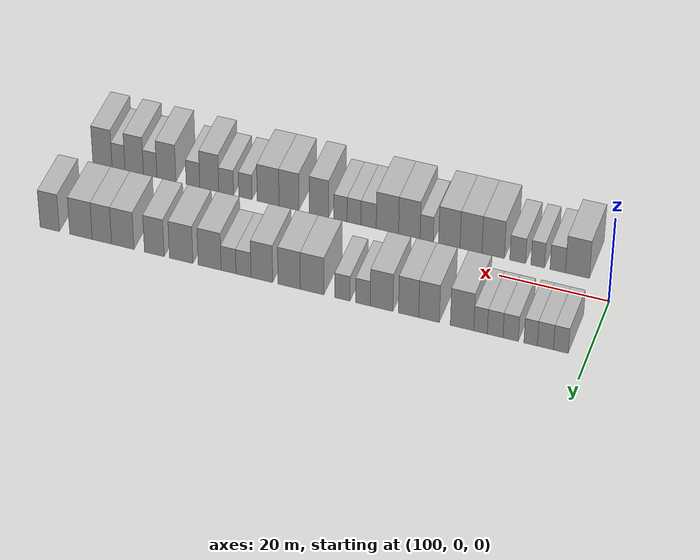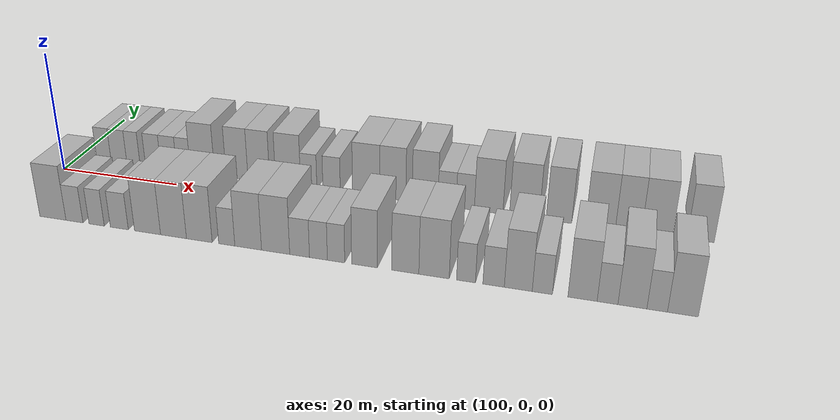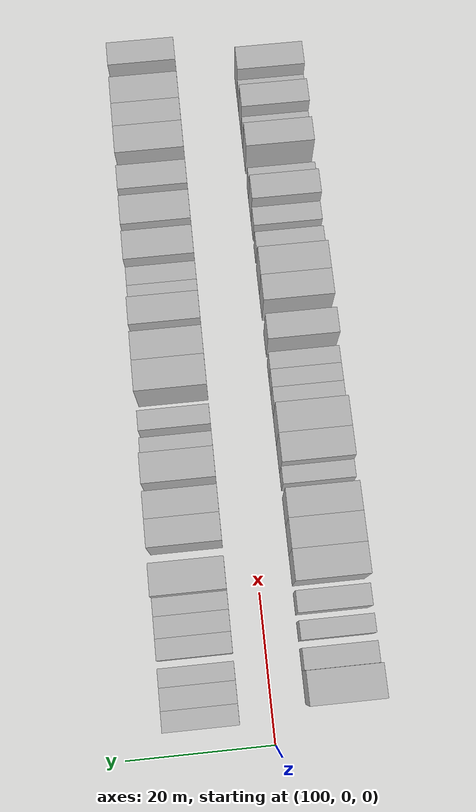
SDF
<sdf version="1.6">
 <world name="default">
  <model name="building_26">
   <static>1</static>
   <pose>104.6687 9.5000 0 0.000000 0.000000 1.570796</pose>
   <link name="link">
    <pose>0 0 3.00 0 0 0</pose>
    <collision name="collision"><geometry><box><size>10.0000 2.6517 6.0000</size></box></geometry></collision>
    <visual name="visual">
     <cast_shadows>0</cast_shadows>
     <geometry><box><size>10.0000 2.6517 6.0000</size></box></geometry>
     <material>
      <script>
       <uri>model://HANNAS_wall/materials/scripts</uri>
       <uri>model://HANNAS_wall/materials/textures</uri>
       <name>vrc/HANNAS_wall</name>
      </script>
     </material>
    </visual>
   </link>
  </model>
  <model name="building_27">
   <static>1</static>
   <pose>107.4407 9.5000 0 0.000000 0.000000 1.570796</pose>
   <link name="link">
    <pose>0 0 3.00 0 0 0</pose>
    <collision name="collision"><geometry><box><size>10.0000 2.8923 6.0000</size></box></geometry></collision>
    <visual name="visual">
     <cast_shadows>0</cast_shadows>
     <geometry><box><size>10.0000 2.8923 6.0000</size></box></geometry>
     <material>
      <script>
       <uri>model://HANNAS_wall/materials/scripts</uri>
       <uri>model://HANNAS_wall/materials/textures</uri>
       <name>vrc/HANNAS_wall</name>
      </script>
     </material>
    </visual>
   </link>
  </model>
  <model name="building_28">
   <static>1</static>
   <pose>110.0935 9.5000 0 0.000000 0.000000 1.570796</pose>
   <link name="link">
    <pose>0 0 3.00 0 0 0</pose>
    <collision name="collision"><geometry><box><size>10.0000 2.4133 6.0000</size></box></geometry></collision>
    <visual name="visual">
     <cast_shadows>0</cast_shadows>
     <geometry><box><size>10.0000 2.4133 6.0000</size></box></geometry>
     <material>
      <script>
       <uri>model://HANNAS_wall/materials/scripts</uri>
       <uri>model://HANNAS_wall/materials/textures</uri>
       <name>vrc/HANNAS_wall</name>
      </script>
     </material>
    </visual>
   </link>
  </model>
  <model name="building_29">
   <static>1</static>
   <pose>113.6905 9.5000 0 0.000000 0.000000 1.570796</pose>
   <link name="link">
    <pose>0 0 3.00 0 0 0</pose>
    <collision name="collision"><geometry><box><size>10.0000 2.7808 6.0000</size></box></geometry></collision>
    <visual name="visual">
     <cast_shadows>0</cast_shadows>
     <geometry><box><size>10.0000 2.7808 6.0000</size></box></geometry>
     <material>
      <script>
       <uri>model://HANNAS_wall/materials/scripts</uri>
       <uri>model://HANNAS_wall/materials/textures</uri>
       <name>vrc/HANNAS_wall</name>
      </script>
     </material>
    </visual>
   </link>
  </model>
  <model name="building_30">
   <static>1</static>
   <pose>116.5010 9.5000 0 0.000000 0.000000 1.570796</pose>
   <link name="link">
    <pose>0 0 3.00 0 0 0</pose>
    <collision name="collision"><geometry><box><size>10.0000 2.8401 6.0000</size></box></geometry></collision>
    <visual name="visual">
     <cast_shadows>0</cast_shadows>
     <geometry><box><size>10.0000 2.8401 6.0000</size></box></geometry>
     <material>
      <script>
       <uri>model://HANNAS_wall/materials/scripts</uri>
       <uri>model://HANNAS_wall/materials/textures</uri>
       <name>vrc/HANNAS_wall</name>
      </script>
     </material>
    </visual>
   </link>
  </model>
  <model name="building_31">
   <static>1</static>
   <pose>119.1391 9.5000 0 0.000000 0.000000 1.570796</pose>
   <link name="link">
    <pose>0 0 3.00 0 0 0</pose>
    <collision name="collision"><geometry><box><size>10.0000 2.4362 6.0000</size></box></geometry></collision>
    <visual name="visual">
     <cast_shadows>0</cast_shadows>
     <geometry><box><size>10.0000 2.4362 6.0000</size></box></geometry>
     <material>
      <script>
       <uri>model://HANNAS_wall/materials/scripts</uri>
       <uri>model://HANNAS_wall/materials/textures</uri>
       <name>vrc/HANNAS_wall</name>
      </script>
     </material>
    </visual>
   </link>
  </model>
  <model name="building_32">
   <static>1</static>
   <pose>122.4909 9.5000 0 0.000000 0.000000 1.570796</pose>
   <link name="link">
    <pose>0 0 4.50 0 0 0</pose>
    <collision name="collision"><geometry><box><size>10.0000 4.2673 9.0000</size></box></geometry></collision>
    <visual name="visual">
     <cast_shadows>0</cast_shadows>
     <geometry><box><size>10.0000 4.2673 9.0000</size></box></geometry>
     <material>
      <script>
       <uri>model://HANNAS_wall/materials/scripts</uri>
       <uri>model://HANNAS_wall/materials/textures</uri>
       <name>vrc/HANNAS_wall</name>
      </script>
     </material>
    </visual>
   </link>
  </model>
  <model name="building_33">
   <static>1</static>
   <pose>128.5129 9.5000 0 0.000000 0.000000 1.570796</pose>
   <link name="link">
    <pose>0 0 4.50 0 0 0</pose>
    <collision name="collision"><geometry><box><size>10.0000 3.7769 9.0000</size></box></geometry></collision>
    <visual name="visual">
     <cast_shadows>0</cast_shadows>
     <geometry><box><size>10.0000 3.7769 9.0000</size></box></geometry>
     <material>
      <script>
       <uri>model://HANNAS_wall/materials/scripts</uri>
       <uri>model://HANNAS_wall/materials/textures</uri>
       <name>vrc/HANNAS_wall</name>
      </script>
     </material>
    </visual>
   </link>
  </model>
  <model name="building_34">
   <static>1</static>
   <pose>132.2563 9.5000 0 0.000000 0.000000 1.570796</pose>
   <link name="link">
    <pose>0 0 4.50 0 0 0</pose>
    <collision name="collision"><geometry><box><size>10.0000 3.7100 9.0000</size></box></geometry></collision>
    <visual name="visual">
     <cast_shadows>0</cast_shadows>
     <geometry><box><size>10.0000 3.7100 9.0000</size></box></geometry>
     <material>
      <script>
       <uri>model://HANNAS_wall/materials/scripts</uri>
       <uri>model://HANNAS_wall/materials/textures</uri>
       <name>vrc/HANNAS_wall</name>
      </script>
     </material>
    </visual>
   </link>
  </model>
  <model name="building_35">
   <static>1</static>
   <pose>137.2074 9.5000 0 0.000000 0.000000 1.570796</pose>
   <link name="link">
    <pose>0 0 4.50 0 0 0</pose>
    <collision name="collision"><geometry><box><size>10.0000 4.1921 9.0000</size></box></geometry></collision>
    <visual name="visual">
     <cast_shadows>0</cast_shadows>
     <geometry><box><size>10.0000 4.1921 9.0000</size></box></geometry>
     <material>
      <script>
       <uri>model://HANNAS_wall/materials/scripts</uri>
       <uri>model://HANNAS_wall/materials/textures</uri>
       <name>vrc/HANNAS_wall</name>
      </script>
     </material>
    </visual>
   </link>
  </model>
  <model name="building_36">
   <static>1</static>
   <pose>140.6549 9.5000 0 0.000000 0.000000 1.570796</pose>
   <link name="link">
    <pose>0 0 3.00 0 0 0</pose>
    <collision name="collision"><geometry><box><size>10.0000 2.7029 6.0000</size></box></geometry></collision>
    <visual name="visual">
     <cast_shadows>0</cast_shadows>
     <geometry><box><size>10.0000 2.7029 6.0000</size></box></geometry>
     <material>
      <script>
       <uri>model://HANNAS_wall/materials/scripts</uri>
       <uri>model://HANNAS_wall/materials/textures</uri>
       <name>vrc/HANNAS_wall</name>
      </script>
     </material>
    </visual>
   </link>
  </model>
  <model name="building_37">
   <static>1</static>
   <pose>144.4302 9.5000 0 0.000000 0.000000 1.570796</pose>
   <link name="link">
    <pose>0 0 3.00 0 0 0</pose>
    <collision name="collision"><geometry><box><size>10.0000 2.8476 6.0000</size></box></geometry></collision>
    <visual name="visual">
     <cast_shadows>0</cast_shadows>
     <geometry><box><size>10.0000 2.8476 6.0000</size></box></geometry>
     <material>
      <script>
       <uri>model://HANNAS_wall/materials/scripts</uri>
       <uri>model://HANNAS_wall/materials/textures</uri>
       <name>vrc/HANNAS_wall</name>
      </script>
     </material>
    </visual>
   </link>
  </model>
  <model name="building_38">
   <static>1</static>
   <pose>150.0577 9.5000 0 0.000000 0.000000 1.570796</pose>
   <link name="link">
    <pose>0 0 4.50 0 0 0</pose>
    <collision name="collision"><geometry><box><size>10.0000 4.4075 9.0000</size></box></geometry></collision>
    <visual name="visual">
     <cast_shadows>0</cast_shadows>
     <geometry><box><size>10.0000 4.4075 9.0000</size></box></geometry>
     <material>
      <script>
       <uri>model://HANNAS_wall/materials/scripts</uri>
       <uri>model://HANNAS_wall/materials/textures</uri>
       <name>vrc/HANNAS_wall</name>
      </script>
     </material>
    </visual>
   </link>
  </model>
  <model name="building_39">
   <static>1</static>
   <pose>154.3267 9.5000 0 0.000000 0.000000 1.570796</pose>
   <link name="link">
    <pose>0 0 4.50 0 0 0</pose>
    <collision name="collision"><geometry><box><size>10.0000 4.1303 9.0000</size></box></geometry></collision>
    <visual name="visual">
     <cast_shadows>0</cast_shadows>
     <geometry><box><size>10.0000 4.1303 9.0000</size></box></geometry>
     <material>
      <script>
       <uri>model://HANNAS_wall/materials/scripts</uri>
       <uri>model://HANNAS_wall/materials/textures</uri>
       <name>vrc/HANNAS_wall</name>
      </script>
     </material>
    </visual>
   </link>
  </model>
  <model name="building_40">
   <static>1</static>
   <pose>159.4223 9.5000 0 0.000000 0.000000 1.570796</pose>
   <link name="link">
    <pose>0 0 4.50 0 0 0</pose>
    <collision name="collision"><geometry><box><size>10.0000 4.0608 9.0000</size></box></geometry></collision>
    <visual name="visual">
     <cast_shadows>0</cast_shadows>
     <geometry><box><size>10.0000 4.0608 9.0000</size></box></geometry>
     <material>
      <script>
       <uri>model://HANNAS_wall/materials/scripts</uri>
       <uri>model://HANNAS_wall/materials/textures</uri>
       <name>vrc/HANNAS_wall</name>
      </script>
     </material>
    </visual>
   </link>
  </model>
  <model name="building_41">
   <static>1</static>
   <pose>162.8535 9.5000 0 0.000000 0.000000 1.570796</pose>
   <link name="link">
    <pose>0 0 3.00 0 0 0</pose>
    <collision name="collision"><geometry><box><size>10.0000 2.8017 6.0000</size></box></geometry></collision>
    <visual name="visual">
     <cast_shadows>0</cast_shadows>
     <geometry><box><size>10.0000 2.8017 6.0000</size></box></geometry>
     <material>
      <script>
       <uri>model://HANNAS_wall/materials/scripts</uri>
       <uri>model://HANNAS_wall/materials/textures</uri>
       <name>vrc/HANNAS_wall</name>
      </script>
     </material>
    </visual>
   </link>
  </model>
  <model name="building_42">
   <static>1</static>
   <pose>165.6566 9.5000 0 0.000000 0.000000 1.570796</pose>
   <link name="link">
    <pose>0 0 3.00 0 0 0</pose>
    <collision name="collision"><geometry><box><size>10.0000 2.8044 6.0000</size></box></geometry></collision>
    <visual name="visual">
     <cast_shadows>0</cast_shadows>
     <geometry><box><size>10.0000 2.8044 6.0000</size></box></geometry>
     <material>
      <script>
       <uri>model://HANNAS_wall/materials/scripts</uri>
       <uri>model://HANNAS_wall/materials/textures</uri>
       <name>vrc/HANNAS_wall</name>
      </script>
     </material>
    </visual>
   </link>
  </model>
  <model name="building_43">
   <static>1</static>
   <pose>169.2194 9.5000 0 0.000000 0.000000 1.570796</pose>
   <link name="link">
    <pose>0 0 4.50 0 0 0</pose>
    <collision name="collision"><geometry><box><size>10.0000 4.3211 9.0000</size></box></geometry></collision>
    <visual name="visual">
     <cast_shadows>0</cast_shadows>
     <geometry><box><size>10.0000 4.3211 9.0000</size></box></geometry>
     <material>
      <script>
       <uri>model://HANNAS_wall/materials/scripts</uri>
       <uri>model://HANNAS_wall/materials/textures</uri>
       <name>vrc/HANNAS_wall</name>
      </script>
     </material>
    </visual>
   </link>
  </model>
  <model name="building_44">
   <static>1</static>
   <pose>174.6049 9.5000 0 0.000000 0.000000 1.570796</pose>
   <link name="link">
    <pose>0 0 4.50 0 0 0</pose>
    <collision name="collision"><geometry><box><size>10.0000 4.4500 9.0000</size></box></geometry></collision>
    <visual name="visual">
     <cast_shadows>0</cast_shadows>
     <geometry><box><size>10.0000 4.4500 9.0000</size></box></geometry>
     <material>
      <script>
       <uri>model://HANNAS_wall/materials/scripts</uri>
       <uri>model://HANNAS_wall/materials/textures</uri>
       <name>vrc/HANNAS_wall</name>
      </script>
     </material>
    </visual>
   </link>
  </model>
  <model name="building_45">
   <static>1</static>
   <pose>179.7046 9.5000 0 0.000000 0.000000 1.570796</pose>
   <link name="link">
    <pose>0 0 4.50 0 0 0</pose>
    <collision name="collision"><geometry><box><size>10.0000 3.7493 9.0000</size></box></geometry></collision>
    <visual name="visual">
     <cast_shadows>0</cast_shadows>
     <geometry><box><size>10.0000 3.7493 9.0000</size></box></geometry>
     <material>
      <script>
       <uri>model://HANNAS_wall/materials/scripts</uri>
       <uri>model://HANNAS_wall/materials/textures</uri>
       <name>vrc/HANNAS_wall</name>
      </script>
     </material>
    </visual>
   </link>
  </model>
  <model name="building_46">
   <static>1</static>
   <pose>185.7263 9.5000 0 0.000000 0.000000 1.570796</pose>
   <link name="link">
    <pose>0 0 4.50 0 0 0</pose>
    <collision name="collision"><geometry><box><size>10.0000 4.2943 9.0000</size></box></geometry></collision>
    <visual name="visual">
     <cast_shadows>0</cast_shadows>
     <geometry><box><size>10.0000 4.2943 9.0000</size></box></geometry>
     <material>
      <script>
       <uri>model://HANNAS_wall/materials/scripts</uri>
       <uri>model://HANNAS_wall/materials/textures</uri>
       <name>vrc/HANNAS_wall</name>
      </script>
     </material>
    </visual>
   </link>
  </model>
  <model name="building_47">
   <static>1</static>
   <pose>189.7225 9.5000 0 0.000000 0.000000 1.570796</pose>
   <link name="link">
    <pose>0 0 4.50 0 0 0</pose>
    <collision name="collision"><geometry><box><size>10.0000 3.6982 9.0000</size></box></geometry></collision>
    <visual name="visual">
     <cast_shadows>0</cast_shadows>
     <geometry><box><size>10.0000 3.6982 9.0000</size></box></geometry>
     <material>
      <script>
       <uri>model://HANNAS_wall/materials/scripts</uri>
       <uri>model://HANNAS_wall/materials/textures</uri>
       <name>vrc/HANNAS_wall</name>
      </script>
     </material>
    </visual>
   </link>
  </model>
  <model name="building_48">
   <static>1</static>
   <pose>193.7382 9.5000 0 0.000000 0.000000 1.570796</pose>
   <link name="link">
    <pose>0 0 4.50 0 0 0</pose>
    <collision name="collision"><geometry><box><size>10.0000 4.3332 9.0000</size></box></geometry></collision>
    <visual name="visual">
     <cast_shadows>0</cast_shadows>
     <geometry><box><size>10.0000 4.3332 9.0000</size></box></geometry>
     <material>
      <script>
       <uri>model://HANNAS_wall/materials/scripts</uri>
       <uri>model://HANNAS_wall/materials/textures</uri>
       <name>vrc/HANNAS_wall</name>
      </script>
     </material>
    </visual>
   </link>
  </model>
  <model name="building_49">
   <static>1</static>
   <pose>199.7692 9.5000 0 0.000000 0.000000 1.570796</pose>
   <link name="link">
    <pose>0 0 4.50 0 0 0</pose>
    <collision name="collision"><geometry><box><size>10.0000 3.7288 9.0000</size></box></geometry></collision>
    <visual name="visual">
     <cast_shadows>0</cast_shadows>
     <geometry><box><size>10.0000 3.7288 9.0000</size></box></geometry>
     <material>
      <script>
       <uri>model://HANNAS_wall/materials/scripts</uri>
       <uri>model://HANNAS_wall/materials/textures</uri>
       <name>vrc/HANNAS_wall</name>
      </script>
     </material>
    </visual>
   </link>
  </model>
  <model name="building_73">
   <static>1</static>
   <pose>106.9927 -9.5000 0 0.000000 0.000000 1.570796</pose>
   <link name="link">
    <pose>0 0 4.50 0 0 0</pose>
    <collision name="collision"><geometry><box><size>10.0000 4.3918 9.0000</size></box></geometry></collision>
    <visual name="visual">
     <cast_shadows>0</cast_shadows>
     <geometry><box><size>10.0000 4.3918 9.0000</size></box></geometry>
     <material>
      <script>
       <uri>model://HANNAS_wall/materials/scripts</uri>
       <uri>model://HANNAS_wall/materials/textures</uri>
       <name>vrc/HANNAS_wall</name>
      </script>
     </material>
    </visual>
   </link>
  </model>
  <model name="building_74">
   <static>1</static>
   <pose>110.5987 -9.5000 0 0.000000 0.000000 1.570796</pose>
   <link name="link">
    <pose>0 0 3.00 0 0 0</pose>
    <collision name="collision"><geometry><box><size>10.0000 2.8202 6.0000</size></box></geometry></collision>
    <visual name="visual">
     <cast_shadows>0</cast_shadows>
     <geometry><box><size>10.0000 2.8202 6.0000</size></box></geometry>
     <material>
      <script>
       <uri>model://HANNAS_wall/materials/scripts</uri>
       <uri>model://HANNAS_wall/materials/textures</uri>
       <name>vrc/HANNAS_wall</name>
      </script>
     </material>
    </visual>
   </link>
  </model>
  <model name="building_75">
   <static>1</static>
   <pose>114.2626 -9.5000 0 0.000000 0.000000 1.570796</pose>
   <link name="link">
    <pose>0 0 3.00 0 0 0</pose>
    <collision name="collision"><geometry><box><size>10.0000 2.5075 6.0000</size></box></geometry></collision>
    <visual name="visual">
     <cast_shadows>0</cast_shadows>
     <geometry><box><size>10.0000 2.5075 6.0000</size></box></geometry>
     <material>
      <script>
       <uri>model://HANNAS_wall/materials/scripts</uri>
       <uri>model://HANNAS_wall/materials/textures</uri>
       <name>vrc/HANNAS_wall</name>
      </script>
     </material>
    </visual>
   </link>
  </model>
  <model name="building_76">
   <static>1</static>
   <pose>117.9739 -9.5000 0 0.000000 0.000000 1.570796</pose>
   <link name="link">
    <pose>0 0 3.00 0 0 0</pose>
    <collision name="collision"><geometry><box><size>10.0000 2.9152 6.0000</size></box></geometry></collision>
    <visual name="visual">
     <cast_shadows>0</cast_shadows>
     <geometry><box><size>10.0000 2.9152 6.0000</size></box></geometry>
     <material>
      <script>
       <uri>model://HANNAS_wall/materials/scripts</uri>
       <uri>model://HANNAS_wall/materials/textures</uri>
       <name>vrc/HANNAS_wall</name>
      </script>
     </material>
    </visual>
   </link>
  </model>
  <model name="building_77">
   <static>1</static>
   <pose>122.5128 -9.5000 0 0.000000 0.000000 1.570796</pose>
   <link name="link">
    <pose>0 0 4.50 0 0 0</pose>
    <collision name="collision"><geometry><box><size>10.0000 4.1625 9.0000</size></box></geometry></collision>
    <visual name="visual">
     <cast_shadows>0</cast_shadows>
     <geometry><box><size>10.0000 4.1625 9.0000</size></box></geometry>
     <material>
      <script>
       <uri>model://HANNAS_wall/materials/scripts</uri>
       <uri>model://HANNAS_wall/materials/textures</uri>
       <name>vrc/HANNAS_wall</name>
      </script>
     </material>
    </visual>
   </link>
  </model>
  <model name="building_78">
   <static>1</static>
   <pose>126.6348 -9.5000 0 0.000000 0.000000 1.570796</pose>
   <link name="link">
    <pose>0 0 4.50 0 0 0</pose>
    <collision name="collision"><geometry><box><size>10.0000 4.0814 9.0000</size></box></geometry></collision>
    <visual name="visual">
     <cast_shadows>0</cast_shadows>
     <geometry><box><size>10.0000 4.0814 9.0000</size></box></geometry>
     <material>
      <script>
       <uri>model://HANNAS_wall/materials/scripts</uri>
       <uri>model://HANNAS_wall/materials/textures</uri>
       <name>vrc/HANNAS_wall</name>
      </script>
     </material>
    </visual>
   </link>
  </model>
  <model name="building_79">
   <static>1</static>
   <pose>130.6735 -9.5000 0 0.000000 0.000000 1.570796</pose>
   <link name="link">
    <pose>0 0 4.50 0 0 0</pose>
    <collision name="collision"><geometry><box><size>10.0000 3.9961 9.0000</size></box></geometry></collision>
    <visual name="visual">
     <cast_shadows>0</cast_shadows>
     <geometry><box><size>10.0000 3.9961 9.0000</size></box></geometry>
     <material>
      <script>
       <uri>model://HANNAS_wall/materials/scripts</uri>
       <uri>model://HANNAS_wall/materials/textures</uri>
       <name>vrc/HANNAS_wall</name>
      </script>
     </material>
    </visual>
   </link>
  </model>
  <model name="building_80">
   <static>1</static>
   <pose>134.9072 -9.5000 0 0.000000 0.000000 1.570796</pose>
   <link name="link">
    <pose>0 0 3.00 0 0 0</pose>
    <collision name="collision"><geometry><box><size>10.0000 2.4713 6.0000</size></box></geometry></collision>
    <visual name="visual">
     <cast_shadows>0</cast_shadows>
     <geometry><box><size>10.0000 2.4713 6.0000</size></box></geometry>
     <material>
      <script>
       <uri>model://HANNAS_wall/materials/scripts</uri>
       <uri>model://HANNAS_wall/materials/textures</uri>
       <name>vrc/HANNAS_wall</name>
      </script>
     </material>
    </visual>
   </link>
  </model>
  <model name="building_81">
   <static>1</static>
   <pose>138.1639 -9.5000 0 0.000000 0.000000 1.570796</pose>
   <link name="link">
    <pose>0 0 4.50 0 0 0</pose>
    <collision name="collision"><geometry><box><size>10.0000 4.0421 9.0000</size></box></geometry></collision>
    <visual name="visual">
     <cast_shadows>0</cast_shadows>
     <geometry><box><size>10.0000 4.0421 9.0000</size></box></geometry>
     <material>
      <script>
       <uri>model://HANNAS_wall/materials/scripts</uri>
       <uri>model://HANNAS_wall/materials/textures</uri>
       <name>vrc/HANNAS_wall</name>
      </script>
     </material>
    </visual>
   </link>
  </model>
  <model name="building_82">
   <static>1</static>
   <pose>142.2867 -9.5000 0 0.000000 0.000000 1.570796</pose>
   <link name="link">
    <pose>0 0 4.50 0 0 0</pose>
    <collision name="collision"><geometry><box><size>10.0000 4.2036 9.0000</size></box></geometry></collision>
    <visual name="visual">
     <cast_shadows>0</cast_shadows>
     <geometry><box><size>10.0000 4.2036 9.0000</size></box></geometry>
     <material>
      <script>
       <uri>model://HANNAS_wall/materials/scripts</uri>
       <uri>model://HANNAS_wall/materials/textures</uri>
       <name>vrc/HANNAS_wall</name>
      </script>
     </material>
    </visual>
   </link>
  </model>
  <model name="building_83">
   <static>1</static>
   <pose>145.8429 -9.5000 0 0.000000 0.000000 1.570796</pose>
   <link name="link">
    <pose>0 0 3.00 0 0 0</pose>
    <collision name="collision"><geometry><box><size>10.0000 2.9089 6.0000</size></box></geometry></collision>
    <visual name="visual">
     <cast_shadows>0</cast_shadows>
     <geometry><box><size>10.0000 2.9089 6.0000</size></box></geometry>
     <material>
      <script>
       <uri>model://HANNAS_wall/materials/scripts</uri>
       <uri>model://HANNAS_wall/materials/textures</uri>
       <name>vrc/HANNAS_wall</name>
      </script>
     </material>
    </visual>
   </link>
  </model>
  <model name="building_84">
   <static>1</static>
   <pose>148.6015 -9.5000 0 0.000000 0.000000 1.570796</pose>
   <link name="link">
    <pose>0 0 3.00 0 0 0</pose>
    <collision name="collision"><geometry><box><size>10.0000 2.6084 6.0000</size></box></geometry></collision>
    <visual name="visual">
     <cast_shadows>0</cast_shadows>
     <geometry><box><size>10.0000 2.6084 6.0000</size></box></geometry>
     <material>
      <script>
       <uri>model://HANNAS_wall/materials/scripts</uri>
       <uri>model://HANNAS_wall/materials/textures</uri>
       <name>vrc/HANNAS_wall</name>
      </script>
     </material>
    </visual>
   </link>
  </model>
  <model name="building_85">
   <static>1</static>
   <pose>151.1562 -9.5000 0 0.000000 0.000000 1.570796</pose>
   <link name="link">
    <pose>0 0 3.00 0 0 0</pose>
    <collision name="collision"><geometry><box><size>10.0000 2.5009 6.0000</size></box></geometry></collision>
    <visual name="visual">
     <cast_shadows>0</cast_shadows>
     <geometry><box><size>10.0000 2.5009 6.0000</size></box></geometry>
     <material>
      <script>
       <uri>model://HANNAS_wall/materials/scripts</uri>
       <uri>model://HANNAS_wall/materials/textures</uri>
       <name>vrc/HANNAS_wall</name>
      </script>
     </material>
    </visual>
   </link>
  </model>
  <model name="building_86">
   <static>1</static>
   <pose>155.2401 -9.5000 0 0.000000 0.000000 1.570796</pose>
   <link name="link">
    <pose>0 0 4.50 0 0 0</pose>
    <collision name="collision"><geometry><box><size>10.0000 3.6669 9.0000</size></box></geometry></collision>
    <visual name="visual">
     <cast_shadows>0</cast_shadows>
     <geometry><box><size>10.0000 3.6669 9.0000</size></box></geometry>
     <material>
      <script>
       <uri>model://HANNAS_wall/materials/scripts</uri>
       <uri>model://HANNAS_wall/materials/textures</uri>
       <name>vrc/HANNAS_wall</name>
      </script>
     </material>
    </visual>
   </link>
  </model>
  <model name="building_87">
   <static>1</static>
   <pose>160.9755 -9.5000 0 0.000000 0.000000 1.570796</pose>
   <link name="link">
    <pose>0 0 4.50 0 0 0</pose>
    <collision name="collision"><geometry><box><size>10.0000 3.8040 9.0000</size></box></geometry></collision>
    <visual name="visual">
     <cast_shadows>0</cast_shadows>
     <geometry><box><size>10.0000 3.8040 9.0000</size></box></geometry>
     <material>
      <script>
       <uri>model://HANNAS_wall/materials/scripts</uri>
       <uri>model://HANNAS_wall/materials/textures</uri>
       <name>vrc/HANNAS_wall</name>
      </script>
     </material>
    </visual>
   </link>
  </model>
  <model name="building_88">
   <static>1</static>
   <pose>164.9615 -9.5000 0 0.000000 0.000000 1.570796</pose>
   <link name="link">
    <pose>0 0 4.50 0 0 0</pose>
    <collision name="collision"><geometry><box><size>10.0000 4.1680 9.0000</size></box></geometry></collision>
    <visual name="visual">
     <cast_shadows>0</cast_shadows>
     <geometry><box><size>10.0000 4.1680 9.0000</size></box></geometry>
     <material>
      <script>
       <uri>model://HANNAS_wall/materials/scripts</uri>
       <uri>model://HANNAS_wall/materials/textures</uri>
       <name>vrc/HANNAS_wall</name>
      </script>
     </material>
    </visual>
   </link>
  </model>
  <model name="building_89">
   <static>1</static>
   <pose>169.3222 -9.5000 0 0.000000 0.000000 1.570796</pose>
   <link name="link">
    <pose>0 0 3.00 0 0 0</pose>
    <collision name="collision"><geometry><box><size>10.0000 2.5536 6.0000</size></box></geometry></collision>
    <visual name="visual">
     <cast_shadows>0</cast_shadows>
     <geometry><box><size>10.0000 2.5536 6.0000</size></box></geometry>
     <material>
      <script>
       <uri>model://HANNAS_wall/materials/scripts</uri>
       <uri>model://HANNAS_wall/materials/textures</uri>
       <name>vrc/HANNAS_wall</name>
      </script>
     </material>
    </visual>
   </link>
  </model>
  <model name="building_90">
   <static>1</static>
   <pose>173.0292 -9.5000 0 0.000000 0.000000 1.570796</pose>
   <link name="link">
    <pose>0 0 3.00 0 0 0</pose>
    <collision name="collision"><geometry><box><size>10.0000 2.8602 6.0000</size></box></geometry></collision>
    <visual name="visual">
     <cast_shadows>0</cast_shadows>
     <geometry><box><size>10.0000 2.8602 6.0000</size></box></geometry>
     <material>
      <script>
       <uri>model://HANNAS_wall/materials/scripts</uri>
       <uri>model://HANNAS_wall/materials/textures</uri>
       <name>vrc/HANNAS_wall</name>
      </script>
     </material>
    </visual>
   </link>
  </model>
  <model name="building_91">
   <static>1</static>
   <pose>176.2975 -9.5000 0 0.000000 0.000000 1.570796</pose>
   <link name="link">
    <pose>0 0 4.50 0 0 0</pose>
    <collision name="collision"><geometry><box><size>10.0000 3.6766 9.0000</size></box></geometry></collision>
    <visual name="visual">
     <cast_shadows>0</cast_shadows>
     <geometry><box><size>10.0000 3.6766 9.0000</size></box></geometry>
     <material>
      <script>
       <uri>model://HANNAS_wall/materials/scripts</uri>
       <uri>model://HANNAS_wall/materials/textures</uri>
       <name>vrc/HANNAS_wall</name>
      </script>
     </material>
    </visual>
   </link>
  </model>
  <model name="building_92">
   <static>1</static>
   <pose>179.4465 -9.5000 0 0.000000 0.000000 1.570796</pose>
   <link name="link">
    <pose>0 0 3.00 0 0 0</pose>
    <collision name="collision"><geometry><box><size>10.0000 2.6214 6.0000</size></box></geometry></collision>
    <visual name="visual">
     <cast_shadows>0</cast_shadows>
     <geometry><box><size>10.0000 2.6214 6.0000</size></box></geometry>
     <material>
      <script>
       <uri>model://HANNAS_wall/materials/scripts</uri>
       <uri>model://HANNAS_wall/materials/textures</uri>
       <name>vrc/HANNAS_wall</name>
      </script>
     </material>
    </visual>
   </link>
  </model>
  <model name="building_93">
   <static>1</static>
   <pose>184.6243 -9.5000 0 0.000000 0.000000 1.570796</pose>
   <link name="link">
    <pose>0 0 4.50 0 0 0</pose>
    <collision name="collision"><geometry><box><size>10.0000 3.7341 9.0000</size></box></geometry></collision>
    <visual name="visual">
     <cast_shadows>0</cast_shadows>
     <geometry><box><size>10.0000 3.7341 9.0000</size></box></geometry>
     <material>
      <script>
       <uri>model://HANNAS_wall/materials/scripts</uri>
       <uri>model://HANNAS_wall/materials/textures</uri>
       <name>vrc/HANNAS_wall</name>
      </script>
     </material>
    </visual>
   </link>
  </model>
  <model name="building_94">
   <static>1</static>
   <pose>187.8008 -9.5000 0 0.000000 0.000000 1.570796</pose>
   <link name="link">
    <pose>0 0 3.00 0 0 0</pose>
    <collision name="collision"><geometry><box><size>10.0000 2.6189 6.0000</size></box></geometry></collision>
    <visual name="visual">
     <cast_shadows>0</cast_shadows>
     <geometry><box><size>10.0000 2.6189 6.0000</size></box></geometry>
     <material>
      <script>
       <uri>model://HANNAS_wall/materials/scripts</uri>
       <uri>model://HANNAS_wall/materials/textures</uri>
       <name>vrc/HANNAS_wall</name>
      </script>
     </material>
    </visual>
   </link>
  </model>
  <model name="building_95">
   <static>1</static>
   <pose>190.9152 -9.5000 0 0.000000 0.000000 1.570796</pose>
   <link name="link">
    <pose>0 0 4.50 0 0 0</pose>
    <collision name="collision"><geometry><box><size>10.0000 3.6100 9.0000</size></box></geometry></collision>
    <visual name="visual">
     <cast_shadows>0</cast_shadows>
     <geometry><box><size>10.0000 3.6100 9.0000</size></box></geometry>
     <material>
      <script>
       <uri>model://HANNAS_wall/materials/scripts</uri>
       <uri>model://HANNAS_wall/materials/textures</uri>
       <name>vrc/HANNAS_wall</name>
      </script>
     </material>
    </visual>
   </link>
  </model>
  <model name="building_96">
   <static>1</static>
   <pose>193.9880 -9.5000 0 0.000000 0.000000 1.570796</pose>
   <link name="link">
    <pose>0 0 3.00 0 0 0</pose>
    <collision name="collision"><geometry><box><size>10.0000 2.5356 6.0000</size></box></geometry></collision>
    <visual name="visual">
     <cast_shadows>0</cast_shadows>
     <geometry><box><size>10.0000 2.5356 6.0000</size></box></geometry>
     <material>
      <script>
       <uri>model://HANNAS_wall/materials/scripts</uri>
       <uri>model://HANNAS_wall/materials/textures</uri>
       <name>vrc/HANNAS_wall</name>
      </script>
     </material>
    </visual>
   </link>
  </model>
  <model name="building_97">
   <static>1</static>
   <pose>197.1336 -9.5000 0 0.000000 0.000000 1.570796</pose>
   <link name="link">
    <pose>0 0 4.50 0 0 0</pose>
    <collision name="collision"><geometry><box><size>10.0000 3.7556 9.0000</size></box></geometry></collision>
    <visual name="visual">
     <cast_shadows>0</cast_shadows>
     <geometry><box><size>10.0000 3.7556 9.0000</size></box></geometry>
     <material>
      <script>
       <uri>model://HANNAS_wall/materials/scripts</uri>
       <uri>model://HANNAS_wall/materials/textures</uri>
       <name>vrc/HANNAS_wall</name>
      </script>
     </material>
    </visual>
   </link>
  </model>
 </world>
</sdf>
